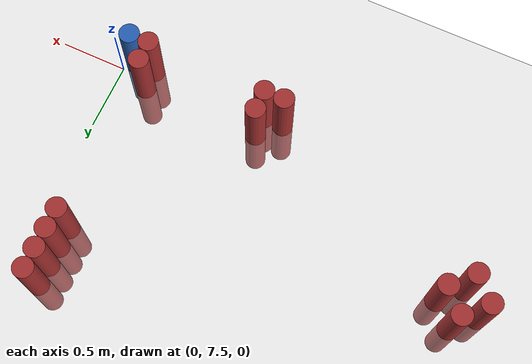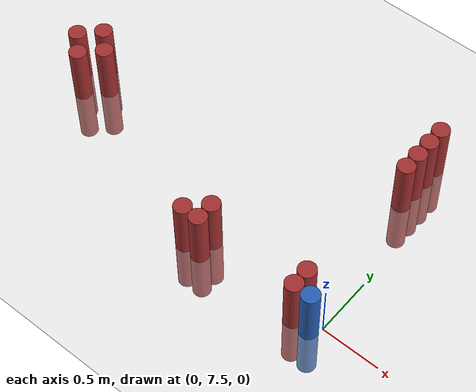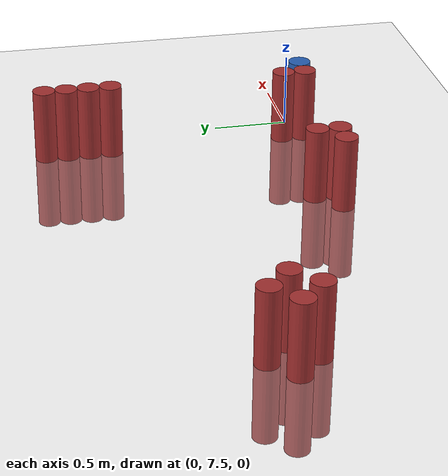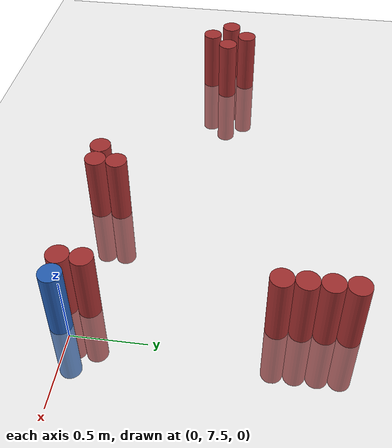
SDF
<sdf version="1.6">
 <world name="default">
  <model name="ground_plane">
   <static>1</static>
   <link name="link">
    <collision name="collision">
     <geometry><plane><normal>0 0 1</normal><size>100 100</size></plane></geometry>
     <surface><friction><ode><mu>100</mu><mu2>50</mu2></ode></friction></surface>
    </collision>
    <visual name="visual">
     <cast_shadows>0</cast_shadows>
     <geometry><plane><normal>0 0 1</normal><size>100 100</size></plane></geometry>
     <material>
      <script><uri>file://media/materials/scripts/gazebo.material</uri><name>Gazebo/Grey</name></script>
     </material>
    </visual>
   </link>
  </model>
  <model name="unit_cylinder_160">
   <static>1</static>
   <pose>-3.075000 8.175000 0.000000 0.000000 0.000000 0.000000</pose>
   <link name="link">
    <inertial>
     <mass>1</mass>
     <inertia><ixx>0.145833</ixx><ixy>0</ixy><ixz>0</ixz><iyy>0.145833</iyy><iyz>0</iyz><izz>0.125</izz></inertia>
    </inertial>
    <collision name="collision">
     <geometry><cylinder><radius>0.075000</radius><length>1</length></cylinder></geometry>
    </collision>
    <visual name="visual">
     <geometry><cylinder><radius>0.075000</radius><length>1</length></cylinder></geometry>
     <material>
      <ambient>0.648000 0.192000 0.192000 1</ambient>
      <diffuse>0.648000 0.192000 0.192000 1</diffuse>
     </material>
     <material>
      <script><name>Gazebo/Grey</name><uri>file://media/materials/scripts/gazebo.material</uri></script>
     </material>
    </visual>
   </link>
  </model>
  <model name="unit_cylinder_161">
   <static>1</static>
   <pose>-2.925000 8.025000 0.000000 0.000000 0.000000 0.000000</pose>
   <link name="link">
    <inertial>
     <mass>1</mass>
     <inertia><ixx>0.145833</ixx><ixy>0</ixy><ixz>0</ixz><iyy>0.145833</iyy><iyz>0</iyz><izz>0.125</izz></inertia>
    </inertial>
    <collision name="collision">
     <geometry><cylinder><radius>0.075000</radius><length>1</length></cylinder></geometry>
    </collision>
    <visual name="visual">
     <geometry><cylinder><radius>0.075000</radius><length>1</length></cylinder></geometry>
     <material>
      <ambient>0.648000 0.192000 0.192000 1</ambient>
      <diffuse>0.648000 0.192000 0.192000 1</diffuse>
     </material>
     <material>
      <script><name>Gazebo/Grey</name><uri>file://media/materials/scripts/gazebo.material</uri></script>
     </material>
    </visual>
   </link>
  </model>
  <model name="unit_cylinder_162">
   <static>1</static>
   <pose>-2.925000 8.325000 0.000000 0.000000 0.000000 0.000000</pose>
   <link name="link">
    <inertial>
     <mass>1</mass>
     <inertia><ixx>0.145833</ixx><ixy>0</ixy><ixz>0</ixz><iyy>0.145833</iyy><iyz>0</iyz><izz>0.125</izz></inertia>
    </inertial>
    <collision name="collision">
     <geometry><cylinder><radius>0.075000</radius><length>1</length></cylinder></geometry>
    </collision>
    <visual name="visual">
     <geometry><cylinder><radius>0.075000</radius><length>1</length></cylinder></geometry>
     <material>
      <ambient>0.648000 0.192000 0.192000 1</ambient>
      <diffuse>0.648000 0.192000 0.192000 1</diffuse>
     </material>
     <material>
      <script><name>Gazebo/Grey</name><uri>file://media/materials/scripts/gazebo.material</uri></script>
     </material>
    </visual>
   </link>
  </model>
  <model name="unit_cylinder_163">
   <static>1</static>
   <pose>-2.775000 8.175000 0.000000 0.000000 0.000000 0.000000</pose>
   <link name="link">
    <inertial>
     <mass>1</mass>
     <inertia><ixx>0.145833</ixx><ixy>0</ixy><ixz>0</ixz><iyy>0.145833</iyy><iyz>0</iyz><izz>0.125</izz></inertia>
    </inertial>
    <collision name="collision">
     <geometry><cylinder><radius>0.075000</radius><length>1</length></cylinder></geometry>
    </collision>
    <visual name="visual">
     <geometry><cylinder><radius>0.075000</radius><length>1</length></cylinder></geometry>
     <material>
      <ambient>0.648000 0.192000 0.192000 1</ambient>
      <diffuse>0.648000 0.192000 0.192000 1</diffuse>
     </material>
     <material>
      <script><name>Gazebo/Grey</name><uri>file://media/materials/scripts/gazebo.material</uri></script>
     </material>
    </visual>
   </link>
  </model>
  <model name="unit_cylinder_164">
   <static>1</static>
   <pose>-1.275000 7.425000 0.000000 0.000000 0.000000 0.000000</pose>
   <link name="link">
    <inertial>
     <mass>1</mass>
     <inertia><ixx>0.145833</ixx><ixy>0</ixy><ixz>0</ixz><iyy>0.145833</iyy><iyz>0</iyz><izz>0.125</izz></inertia>
    </inertial>
    <collision name="collision">
     <geometry><cylinder><radius>0.075000</radius><length>1</length></cylinder></geometry>
    </collision>
    <visual name="visual">
     <geometry><cylinder><radius>0.075000</radius><length>1</length></cylinder></geometry>
     <material>
      <ambient>0.648000 0.192000 0.192000 1</ambient>
      <diffuse>0.648000 0.192000 0.192000 1</diffuse>
     </material>
     <material>
      <script><name>Gazebo/Grey</name><uri>file://media/materials/scripts/gazebo.material</uri></script>
     </material>
    </visual>
   </link>
  </model>
  <model name="unit_cylinder_165">
   <static>1</static>
   <pose>-1.125000 7.425000 0.000000 0.000000 0.000000 0.000000</pose>
   <link name="link">
    <inertial>
     <mass>1</mass>
     <inertia><ixx>0.145833</ixx><ixy>0</ixy><ixz>0</ixz><iyy>0.145833</iyy><iyz>0</iyz><izz>0.125</izz></inertia>
    </inertial>
    <collision name="collision">
     <geometry><cylinder><radius>0.075000</radius><length>1</length></cylinder></geometry>
    </collision>
    <visual name="visual">
     <geometry><cylinder><radius>0.075000</radius><length>1</length></cylinder></geometry>
     <material>
      <ambient>0.648000 0.192000 0.192000 1</ambient>
      <diffuse>0.648000 0.192000 0.192000 1</diffuse>
     </material>
     <material>
      <script><name>Gazebo/Grey</name><uri>file://media/materials/scripts/gazebo.material</uri></script>
     </material>
    </visual>
   </link>
  </model>
  <model name="unit_cylinder_166">
   <static>1</static>
   <pose>-1.125000 7.575000 0.000000 0.000000 0.000000 0.000000</pose>
   <link name="link">
    <inertial>
     <mass>1</mass>
     <inertia><ixx>0.145833</ixx><ixy>0</ixy><ixz>0</ixz><iyy>0.145833</iyy><iyz>0</iyz><izz>0.125</izz></inertia>
    </inertial>
    <collision name="collision">
     <geometry><cylinder><radius>0.075000</radius><length>1</length></cylinder></geometry>
    </collision>
    <visual name="visual">
     <geometry><cylinder><radius>0.075000</radius><length>1</length></cylinder></geometry>
     <material>
      <ambient>0.648000 0.192000 0.192000 1</ambient>
      <diffuse>0.648000 0.192000 0.192000 1</diffuse>
     </material>
     <material>
      <script><name>Gazebo/Grey</name><uri>file://media/materials/scripts/gazebo.material</uri></script>
     </material>
    </visual>
   </link>
  </model>
  <model name="unit_cylinder_184">
   <static>1</static>
   <pose>-0.225000 7.425000 0.000000 0.000000 0.000000 0.000000</pose>
   <link name="link">
    <inertial>
     <mass>1</mass>
     <inertia><ixx>0.145833</ixx><ixy>0</ixy><ixz>0</ixz><iyy>0.145833</iyy><iyz>0</iyz><izz>0.125</izz></inertia>
    </inertial>
    <collision name="collision">
     <geometry><cylinder><radius>0.075000</radius><length>1</length></cylinder></geometry>
    </collision>
    <visual name="visual">
     <geometry><cylinder><radius>0.075000</radius><length>1</length></cylinder></geometry>
     <material>
      <ambient>0.648000 0.192000 0.192000 1</ambient>
      <diffuse>0.648000 0.192000 0.192000 1</diffuse>
     </material>
     <material>
      <script><name>Gazebo/Grey</name><uri>file://media/materials/scripts/gazebo.material</uri></script>
     </material>
    </visual>
   </link>
  </model>
  <model name="unit_cylinder_185">
   <static>1</static>
   <pose>-0.225000 7.575000 0.000000 0.000000 0.000000 0.000000</pose>
   <link name="link">
    <inertial>
     <mass>1</mass>
     <inertia><ixx>0.145833</ixx><ixy>0</ixy><ixz>0</ixz><iyy>0.145833</iyy><iyz>0</iyz><izz>0.125</izz></inertia>
    </inertial>
    <collision name="collision">
     <geometry><cylinder><radius>0.075000</radius><length>1</length></cylinder></geometry>
    </collision>
    <visual name="visual">
     <geometry><cylinder><radius>0.075000</radius><length>1</length></cylinder></geometry>
     <material>
      <ambient>0.648000 0.192000 0.192000 1</ambient>
      <diffuse>0.648000 0.192000 0.192000 1</diffuse>
     </material>
     <material>
      <script><name>Gazebo/Grey</name><uri>file://media/materials/scripts/gazebo.material</uri></script>
     </material>
    </visual>
   </link>
  </model>
  <model name="unit_cylinder_186">
   <static>1</static>
   <pose>-0.225000 8.775000 0.000000 0.000000 0.000000 0.000000</pose>
   <link name="link">
    <inertial>
     <mass>1</mass>
     <inertia><ixx>0.145833</ixx><ixy>0</ixy><ixz>0</ixz><iyy>0.145833</iyy><iyz>0</iyz><izz>0.125</izz></inertia>
    </inertial>
    <collision name="collision">
     <geometry><cylinder><radius>0.075000</radius><length>1</length></cylinder></geometry>
    </collision>
    <visual name="visual">
     <geometry><cylinder><radius>0.075000</radius><length>1</length></cylinder></geometry>
     <material>
      <ambient>0.648000 0.192000 0.192000 1</ambient>
      <diffuse>0.648000 0.192000 0.192000 1</diffuse>
     </material>
     <material>
      <script><name>Gazebo/Grey</name><uri>file://media/materials/scripts/gazebo.material</uri></script>
     </material>
    </visual>
   </link>
  </model>
  <model name="unit_cylinder_187">
   <static>1</static>
   <pose>-0.225000 8.925000 0.000000 0.000000 0.000000 0.000000</pose>
   <link name="link">
    <inertial>
     <mass>1</mass>
     <inertia><ixx>0.145833</ixx><ixy>0</ixy><ixz>0</ixz><iyy>0.145833</iyy><iyz>0</iyz><izz>0.125</izz></inertia>
    </inertial>
    <collision name="collision">
     <geometry><cylinder><radius>0.075000</radius><length>1</length></cylinder></geometry>
    </collision>
    <visual name="visual">
     <geometry><cylinder><radius>0.075000</radius><length>1</length></cylinder></geometry>
     <material>
      <ambient>0.648000 0.192000 0.192000 1</ambient>
      <diffuse>0.648000 0.192000 0.192000 1</diffuse>
     </material>
     <material>
      <script><name>Gazebo/Grey</name><uri>file://media/materials/scripts/gazebo.material</uri></script>
     </material>
    </visual>
   </link>
  </model>
  <model name="unit_cylinder_188">
   <static>1</static>
   <pose>-0.225000 9.075000 0.000000 0.000000 0.000000 0.000000</pose>
   <link name="link">
    <inertial>
     <mass>1</mass>
     <inertia><ixx>0.145833</ixx><ixy>0</ixy><ixz>0</ixz><iyy>0.145833</iyy><iyz>0</iyz><izz>0.125</izz></inertia>
    </inertial>
    <collision name="collision">
     <geometry><cylinder><radius>0.075000</radius><length>1</length></cylinder></geometry>
    </collision>
    <visual name="visual">
     <geometry><cylinder><radius>0.075000</radius><length>1</length></cylinder></geometry>
     <material>
      <ambient>0.648000 0.192000 0.192000 1</ambient>
      <diffuse>0.648000 0.192000 0.192000 1</diffuse>
     </material>
     <material>
      <script><name>Gazebo/Grey</name><uri>file://media/materials/scripts/gazebo.material</uri></script>
     </material>
    </visual>
   </link>
  </model>
  <model name="unit_cylinder_189">
   <static>1</static>
   <pose>-0.225000 9.225000 0.000000 0.000000 0.000000 0.000000</pose>
   <link name="link">
    <inertial>
     <mass>1</mass>
     <inertia><ixx>0.145833</ixx><ixy>0</ixy><ixz>0</ixz><iyy>0.145833</iyy><iyz>0</iyz><izz>0.125</izz></inertia>
    </inertial>
    <collision name="collision">
     <geometry><cylinder><radius>0.075000</radius><length>1</length></cylinder></geometry>
    </collision>
    <visual name="visual">
     <geometry><cylinder><radius>0.075000</radius><length>1</length></cylinder></geometry>
     <material>
      <ambient>0.648000 0.192000 0.192000 1</ambient>
      <diffuse>0.648000 0.192000 0.192000 1</diffuse>
     </material>
     <material>
      <script><name>Gazebo/Grey</name><uri>file://media/materials/scripts/gazebo.material</uri></script>
     </material>
    </visual>
   </link>
  </model>
  <model name="unit_cylinder_205">
   <static>1</static>
   <pose>-0.075000 7.425000 0.000000 0.000000 0.000000 0.000000</pose>
   <link name="link">
    <inertial>
     <mass>1</mass>
     <inertia><ixx>0.145833</ixx><ixy>0</ixy><ixz>0</ixz><iyy>0.145833</iyy><iyz>0</iyz><izz>0.125</izz></inertia>
    </inertial>
    <collision name="collision">
     <geometry><cylinder><radius>0.075000</radius><length>1</length></cylinder></geometry>
    </collision>
    <visual name="visual">
     <geometry><cylinder><radius>0.075000</radius><length>1</length></cylinder></geometry>
     <material>
      <ambient>0.152000 0.379000 0.720000 1</ambient>
      <diffuse>0.152000 0.379000 0.720000 1</diffuse>
     </material>
     <material>
      <script><name>Gazebo/Grey</name><uri>file://media/materials/scripts/gazebo.material</uri></script>
     </material>
    </visual>
   </link>
  </model>
 </world>
</sdf>
